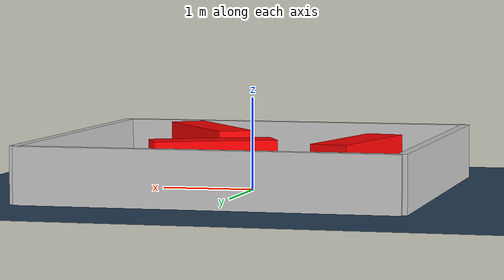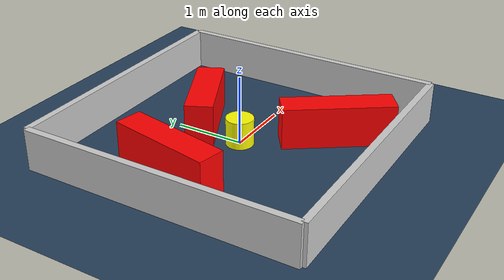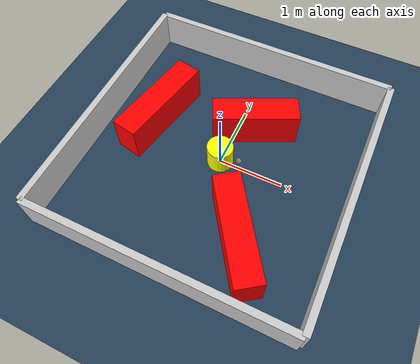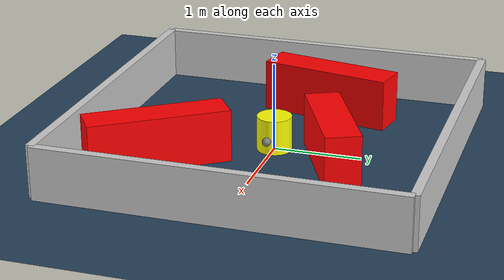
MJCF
<?xml version="1.0" ?>
<mujoco model="generated_environment">
  <option timestep="0.01" integrator="RK4" cone="elliptic"/>
  <default>
    <geom density="1"/>
  </default>
  <asset>
    <texture builtin="gradient" height="3072" rgb1="0.3 0.5 0.7" rgb2="0 0 0" type="skybox" width="512"/>
    <texture builtin="checker" height="300" mark="edge" markrgb="0.8 0.8 0.8" name="groundplane" rgb1="0.2 0.3 0.4" rgb2="0.1 0.2 0.3" type="2d" width="300"/>
    <material name="groundplane" reflectance="0.2" texrepeat="5 5" texture="groundplane" texuniform="true"/>
    <material name="robot" rgba="0.0 1.0 0.0 1"/>
  </asset>
  <worldbody>
    <light dir="0 0 -1" directional="true" pos="0 0 1.5"/>
    <geom condim="4" friction="1.0 0.005 0.001" material="groundplane" name="floor" size="0 0 0.05" type="plane"/>
    <body name="walls">
      <geom name="wall_1" condim="4" pos="-2.0 0.0 0.3" rgba="0.800000011920929 0.800000011920929 0.800000011920929 1.0" size="0.05 2.0 0.3" type="box"/>
      <geom name="wall_2" condim="4" pos="2.0 0.0 0.3" rgba="0.800000011920929 0.800000011920929 0.800000011920929 1.0" size="0.05 2.0 0.3" type="box"/>
      <geom name="wall_3" condim="4" pos="0.0 -2.0 0.3" rgba="0.800000011920929 0.800000011920929 0.800000011920929 1.0" size="2.0 0.05 0.3" type="box"/>
      <geom name="wall_4" condim="4" pos="0.0 2.0 0.3" rgba="0.800000011920929 0.800000011920929 0.800000011920929 1.0" size="2.0 0.05 0.3" type="box"/>
    </body>
    <body name="robot">
      <joint name="joint_x" type="slide" pos="0 0 0" axis="1 0 0"/>
      <joint name="joint_y" type="slide" pos="0 0 0" axis="0 1 0"/>
      <geom name="robot" type="sphere" pos="0.3 0.0 0.2" size="0.05" mass="5." friction="1.0 0.005 0.0001" condim="4" rgba="0.5 0.5 0.5 1.0"/>
      <site name="sensor_ball"/>
    </body>
    <body name="obstacle_movable_1">
      <geom name="obstacle_movable_1" condim="4" pos="0.0 0.0 0.2" euler="0 0 0.0" friction="1.0 0.005 0.001" rgba="1.0 1.0 0.0 1.0" size="0.2 0.2 0.0" type="cylinder" mass="0.1"/>
      <joint type="free"/>
    </body>
    <body name="obstacle_2_static">
      <geom name="obstacle_2_static" condim="4" pos="0.25075312428554986 0.7327382556510187 0.3" euler="0 0 25.327296004037457" friction="1.0 0.005 0.001" rgba="1 0 0 1" size="0.6521193480292155 0.2 0.3" type="box"/>
    </body>
    <body name="obstacle_3_static">
      <geom name="obstacle_3_static" condim="4" pos="-1.2164238218998153 0.3284929565989987 0.3" euler="0 0 78.69513479709444" friction="1.0 0.005 0.001" rgba="1 0 0 1" size="0.772253682909896 0.2 0.3" type="box"/>
    </body>
    <body name="obstacle_4_static">
      <geom name="obstacle_4_static" condim="4" pos="0.7645430330740071 -1.1140411550199887 0.3" euler="0 0 125.04753381802476" friction="1.0 0.005 0.001" rgba="1 0 0 1" size="0.7929960447831864 0.2 0.3" type="box"/>
    </body>
  </worldbody>
  <actuator>
    <motor name="actuator_x" joint="joint_x" gear="1" ctrlrange="-1 1"/>
    <motor name="actuator_y" joint="joint_y" gear="1" ctrlrange="-1 1"/>
  </actuator>
</mujoco>
